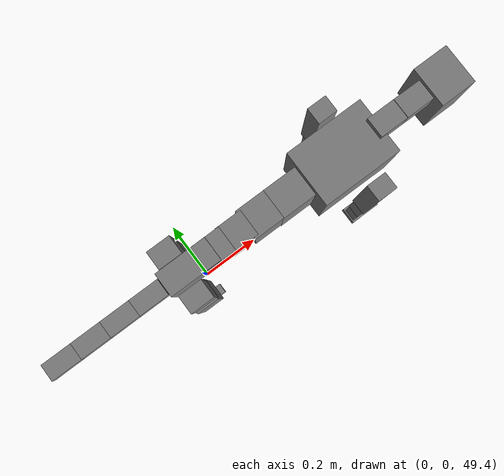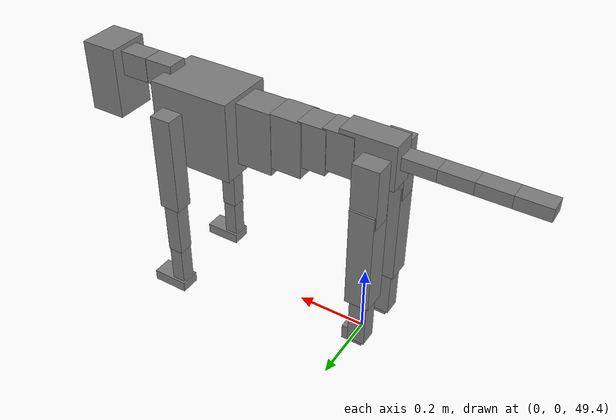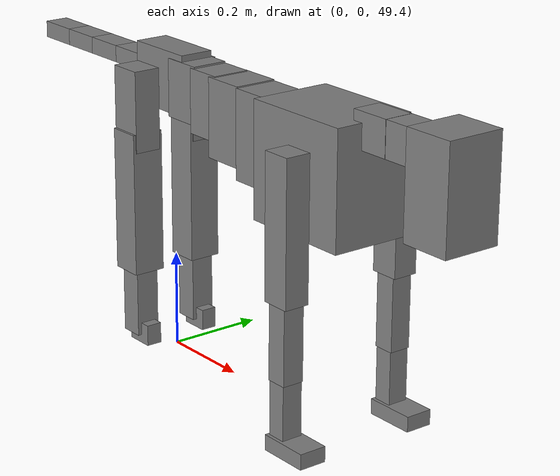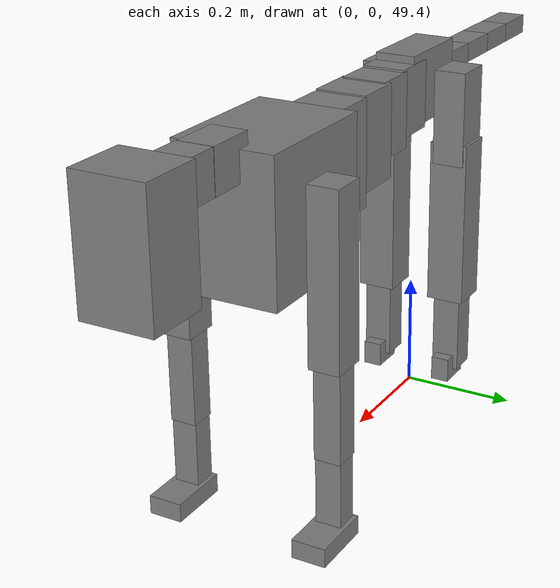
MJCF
<mujoco model="dog">

    <default>
        <joint armature="0.02" stiffness="1" damping="0.2" limited="true"/>
        <geom condim="3" friction="1 0.05 0.05" margin="0.01"/>
        <motor ctrllimited="true" ctrlrange="-1.0 1.0" forcelimited="true" gear="50"/>
    </default>

    <compiler inertiafromgeom="true" angle="radian"/>

    <option timestep="0.016" iterations="50" tolerance="1e-10" solver="Newton" jacobian="dense" cone="pyramidal"/>

    <size nconmax="20000" njmax="60000" nstack="5000000"/>
    <visual>
        <map force="0.1" zfar="30"/>
        <rgba haze="0.15 0.25 0.35 1"/>
        <quality shadowsize="2048"/>
        <global offwidth="800" offheight="800"/>
    </visual>

    <asset>
        <texture type="skybox" builtin="gradient" rgb1="0.3 0.5 0.7" rgb2="0 0 0" width="512" height="512"/>
        <texture name="texplane" type="2d" builtin="checker" rgb1=".2 .3 .4" rgb2=".1 0.15 0.2" width="512" height="512"
                 mark="cross" markrgb=".8 .8 .8"/>
        <texture name="texgeom" type="cube" builtin="flat" mark="cross" width="127" height="1278" rgb1="0.8 0.6 0.4"
                 rgb2="0.8 0.6 0.4" markrgb="1 1 1" random="0.01"/>

        <material name="matplane" reflectance="0.3" texture="texplane" texrepeat="1 1" texuniform="true"/>
        <material name="matgeom" texture="texgeom" texuniform="true" rgba="0.8 0.6 .4 1"/>
    </asset>

    <worldbody>
        <geom name="floor" pos="0 0 0" size="0 0 .25" type="plane" material="matplane" condim="3"/>

        <light directional="false" diffuse=".2 .2 .2" specular="0 0 0" pos="0 0 5" dir="0 0 -1" castshadow="false"/>
        <light mode="targetbodycom" target="torso" directional="false" diffuse=".8 .8 .8" specular="0.3 0.3 0.3"
               pos="0 0 4.0" dir="0 0 -1"/>

        <body name="root" pos="0 0 50">
            <freejoint name="root_1"/>
            <geom type="box" pos="0 0 -0.02" size="0.0774  0.0358  0.063" density="2030"/>

            <body name="spine1" pos="0.054 0 0">
                <joint name="spine1_y" axis="0 1 0" range="0 0.7" limited="true"/>
                <geom type="box" pos="0.02375 0 -0.03" size="0.04375  0.0375  0.05985" density="2030"/>

                <body name="spine2" pos="0.0612 0 0">
                    <joint name="spine2_y" axis="0 1 0" range="-0.15 0.15" limited="true"/>
                    <geom type="box" pos="0.03555  0  -0.04" size="0.04055  0.039  0.06615" density="2030"/>

                    <body name="spine3" pos="0.0730 0 0">
                        <joint name="spine3_y" axis="0 1 0" range="-0.15 0.15" limited="true"/>
                        <geom type="box" pos="0.03555  0  -0.057" size="0.04555  0.0445  0.081" density="2030"/>

                        <body name="spine4" pos="0.0780 0 0">
                            <joint name="spine4_y" axis="0 1 0" range="-0.15 0.15" limited="true"/>
                            <geom type="box" pos="0.05265  0  -0.07" size="0.05265  0.045  0.09135" density="2030"/>

                            <body name="torso" pos="0.1082 0 0">
                                <joint name="torso_y" axis="0 1 0" range="-0.15 0.15" limited="true"/>
                                <geom type="box" pos="0.11925  0  -0.085" size="0.11925  0.085  0.11745"
                                      density="2030"/>

                                <body name="neck1" pos="0.2160  0   0.0180">
                                    <joint name="neck1_y" axis="0 1 0" range="-1.2  -1" limited="true"/>
                                    <geom type="box" pos="0.0423  0  0" size="0.0423  0.03  0.036" density="2325"/>

                                    <body name="neck2" pos="0.0853  0  0">
                                        <joint name="neck2_y" axis="0 1 0" range="0.1  0" limited="true"/>
                                        <geom type="box" pos="0.0423  0  0" size="0.0423  0.03  0.036" density="2325"/>

                                        <body name="head" pos="0.0853  0  0">
                                            <joint name="head_y" axis="0 1 0" range="-0.3  -0.2" limited="true"/>
                                            <geom type="box" pos="0.0531  0  -0.055" size="0.0531  0.06  0.1044"
                                                  density="4030"/>

                                        </body>
                                    </body>
                                </body>

                                <body name="front_shoulder" pos="0.156  0   -0.0480">
                                    <joint name="front_shoulder_y" axis="0 1 0" range="-1 1.5" limited="true"/>
                                    <geom type="box" pos="0 0.13 -0.1171" size="0.0305  0.0261  0.1437" density="1158"/>
                                    <geom type="box" pos="0 -0.13 -0.1171" size="0.0305  0.0261  0.1437"
                                          density="1158"/>

                                    <body name="front_elbow" pos="0  0  -0.2342">
                                        <joint name="front_elbow_y" axis="0 1 0" range="-2 0" limited="true"/>
                                        <geom type="box" pos="0 0.13 -0.0900" size="0.0219  0.0224  0.0900"
                                              density="1081"/>
                                        <geom type="box" pos="0 -0.13 -0.0900" size="0.0219  0.0224  0.0900"
                                              density="1081"/>

                                        <body name="front_wrist" pos="0  0  -0.1801">
                                            <joint name="front_wrist_y" axis="0 1 0" range="-0.2 0" limited="true"/>
                                            <geom type="box" pos="0 0.13 -0.0625" size="0.0195  0.0216  0.0756"
                                                  density="1664"/>
                                            <geom type="box" pos="0 -0.13 -0.0625" size="0.0195  0.0216  0.0756"
                                                  density="1664"/>

                                            <body name="front_finger_end" pos="0  0  -0.1249">
                                                <joint name="front_finger_y" axis="0 1 0" range="-0.4 1"
                                                       limited="true"/>
                                                <geom type="box" pos="0.0287  0.13  -0.0008"
                                                      size="0.0527  0.0287  0.0158" density="1515"/>
                                                <geom type="box" pos="0.0287  -0.13  -0.0008"
                                                      size="0.0527  0.0287  0.0158" density="1515"/>

                                            </body>

                                        </body>
                                    </body>
                                </body>

                            </body>
                        </body>
                    </body>
                </body>
            </body>

            <body name="back_hip" pos="-0.03 0 -0.018">
                <joint name="back_hip_y" axis="0 1 0" range="-1.5 0.3" limited="true"/>
                <geom type="box" pos="0 0.07 -0.0616" size="0.0363  0.0285  0.0844" density="1154"/>
                <geom type="box" pos="0 -0.07 -0.0616" size="0.0363  0.0285  0.0844" density="1154"/>

                <body name="back_knee" pos="0  0  -0.1232">
                    <joint name="back_knee_y" axis="0 1 0" range="0 2.8" limited="true"/>
                    <geom type="box" pos="0 0.07 -0.1335" size="0.0345  0.0340  0.1491" density="1227"/>
                    <geom type="box" pos="0 -0.07 -0.1335" size="0.0345  0.0340  0.1491" density="1227"/>

                    <body name="back_ankle" pos="0  0  -0.2671">
                        <joint name="back_ankle_y" axis="0 1 0" range="-2.2 0" limited="true"/>
                        <geom type="box" pos="0 0.07 -0.0717" size="0.0248  0.0248  0.0829" density="1284"/>
                        <geom type="box" pos="0 -0.07 -0.0717" size="0.0248  0.0248  0.0829" density="1284"/>

                        <body name="back_toe_end" pos="0  0  -0.1433">
                            <joint name="back_toe_y" axis="0 1 0" range="-0.4 1" limited="true"/>
                            <geom type="box" pos="0.0165  0.07  -0.0070" size="0.0302  0.0165  0.0220" density="1515"/>
                            <geom type="box" pos="0.0165  -0.07  -0.0070" size="0.0302  0.0165  0.0220" density="1515"/>

                        </body>
                    </body>
                </body>
            </body>

            <body name="tail1" pos="-0.074 0 -0.006">
                <joint name="tail1_y" axis="0 1 0" range="-0.2 0.2" limited="true"/>
                <geom type="box" pos="-0.0536  0  0" size="0.045  0.025  0.0175" density="1587"/>

                <body name="tail2" pos="-0.09 0 0">
                    <joint name="tail2_y" axis="0 1 0" range="-0.2 0.2" limited="true"/>
                    <geom type="box" pos="-0.0536  0  0" size="0.045  0.025  0.0175" density="1587"/>

                    <body name="tail3" pos="-0.09 0 0">
                        <joint name="tail3_y" axis="0 1 0" range="-0.2 0.2" limited="true"/>
                        <geom type="box" pos="-0.0536  0  0" size="0.045  0.025  0.0175" density="1587"/>

                        <body name="tail4" pos="-0.09 0 0">
                            <joint name="tail4_y" axis="0 1 0" range="-0.2 0.2" limited="true"/>
                            <geom type="box" pos="-0.0536  0  0" size="0.045  0.025  0.0175" density="1587"/>

                        </body>
                    </body>
                </body>
            </body>
        </body>
    </worldbody>

    <actuator>
        <motor joint="spine1_y" forcerange="-150 150     "/>
        <motor joint="spine2_y" forcerange="-150 150     "/>
        <motor joint="spine3_y" forcerange="-150 150     "/>
        <motor joint="spine4_y" forcerange="-150 150     "/>
        <motor joint="torso_y" forcerange="-150 150     "/>
        <motor joint="neck1_y" forcerange="-100 100       "/>
        <motor joint="neck2_y" forcerange="-100 100       "/>
        <motor joint="head_y" forcerange="-150 150       "/>
        <motor joint="front_shoulder_y" forcerange="-138.01 135.97"/>
        <motor joint="front_elbow_y" forcerange="-153.06 109.52"/>
        <motor joint="front_wrist_y" forcerange="-118.30 54.83"/>
        <motor joint="front_finger_y" forcerange="-63.25 50.03"/>
        <motor joint="back_hip_y" forcerange="-283.24 296.81"/>
        <motor joint="back_knee_y" forcerange="-324.27 370.17"/>
        <motor joint="back_angle_y" forcerange="-122.44 174.59"/>
        <motor joint="back_toe_y" forcerange="-29.53 22.44"/>
        <motor joint="tail1_y" forcerange="-50 50     "/>
        <motor joint="tail2_y" forcerange="-50 50     "/>
        <motor joint="tail3_y" forcerange="-50 50     "/>
        <motor joint="tail4_y" forcerange="-50 50     "/>
    </actuator>
</mujoco>
